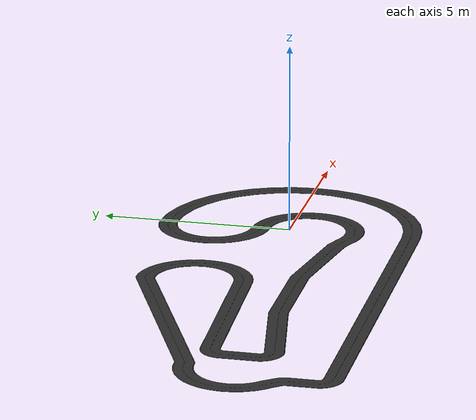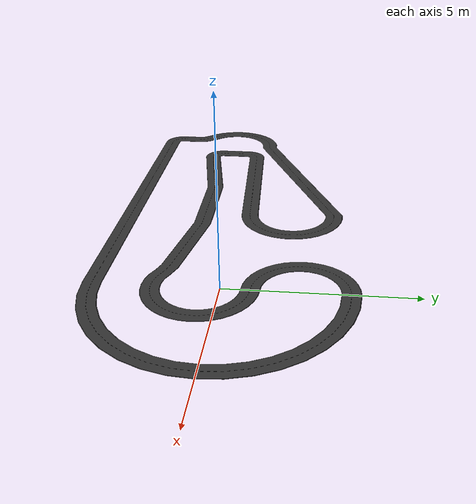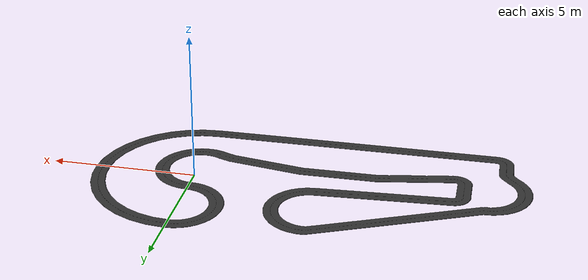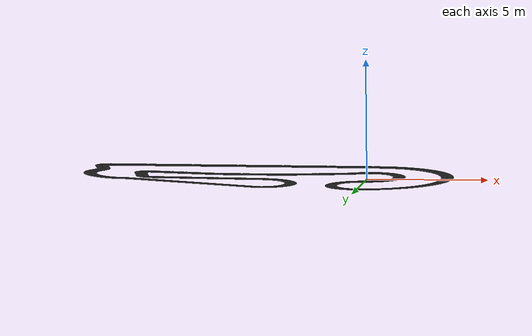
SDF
<?xml version="1.0" ?>
<sdf version="1.6">
  <model name="autcup_race_black_mark">
    <static>true</static>

    <link name="link">
      <collision name="collision">
        <geometry>
          <mesh>
            <uri>model://autocone_description/urdf/models/autcup_race_black_mark/autcup_race_black_mark.dae</uri>
          </mesh>
        </geometry>
        <surface>
            <contact>
              <collide_without_contact>true</collide_without_contact>
            </contact>
          </surface>

      </collision>

      <visual name="visual">
        <cast_shadows>true</cast_shadows>
        <geometry>
          <mesh>
            <uri>model://autocone_description/urdf/models/autcup_race_black_mark/autcup_race_black_mark.dae</uri>
          </mesh>
        </geometry>
      </visual>
    </link>
  </model>
</sdf>
